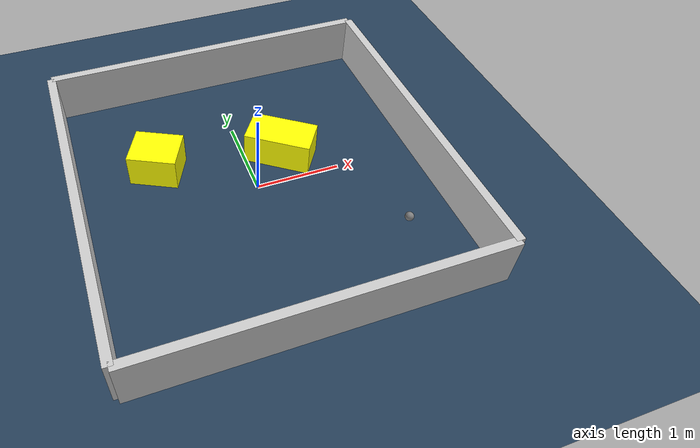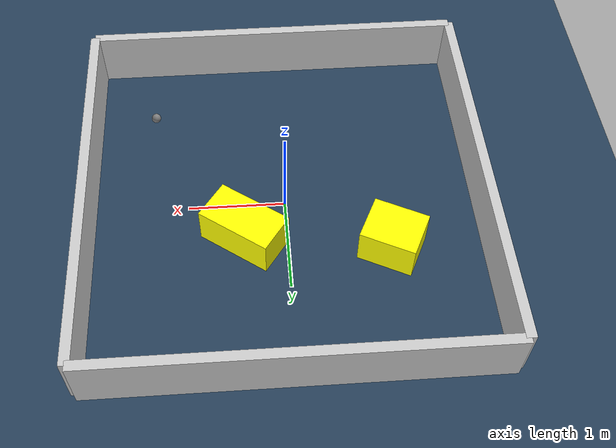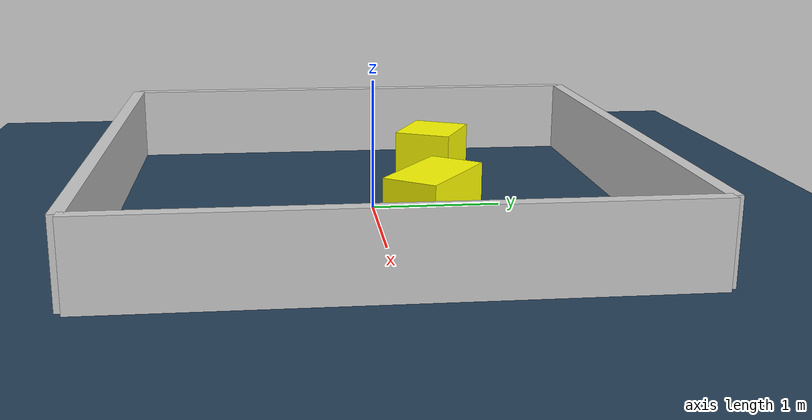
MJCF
<?xml version="1.0" ?>
<mujoco model="generated_environment">
  <option timestep="0.01" integrator="RK4" cone="elliptic"/>
  <default>
    <geom density="1"/>
  </default>
  <asset>
    <texture builtin="gradient" height="3072" rgb1="0.3 0.5 0.7" rgb2="0 0 0" type="skybox" width="512"/>
    <texture builtin="checker" height="300" mark="edge" markrgb="0.8 0.8 0.8" name="groundplane" rgb1="0.2 0.3 0.4" rgb2="0.1 0.2 0.3" type="2d" width="300"/>
    <material name="groundplane" reflectance="0.2" texrepeat="5 5" texture="groundplane" texuniform="true"/>
    <material name="robot" rgba="0.0 1.0 0.0 1"/>
  </asset>
  <worldbody>
    <light dir="0 0 -1" directional="true" pos="0 0 1.5"/>
    <geom condim="4" friction="1.0 0.005 0.001" material="groundplane" name="floor" size="0 0 0.05" type="plane"/>
    <body name="walls">
      <geom name="wall_1" condim="4" pos="-2.0 0.0 0.3" rgba="0.800000011920929 0.800000011920929 0.800000011920929 1.0" size="0.05 2.0 0.3" type="box"/>
      <geom name="wall_2" condim="4" pos="2.0 0.0 0.3" rgba="0.800000011920929 0.800000011920929 0.800000011920929 1.0" size="0.05 2.0 0.3" type="box"/>
      <geom name="wall_3" condim="4" pos="0.0 -2.0 0.3" rgba="0.800000011920929 0.800000011920929 0.800000011920929 1.0" size="2.0 0.05 0.3" type="box"/>
      <geom name="wall_4" condim="4" pos="0.0 2.0 0.3" rgba="0.800000011920929 0.800000011920929 0.800000011920929 1.0" size="2.0 0.05 0.3" type="box"/>
    </body>
    <body name="robot">
      <joint name="joint_x" type="slide" pos="0 0 0" axis="1 0 0"/>
      <joint name="joint_y" type="slide" pos="0 0 0" axis="0 1 0"/>
      <geom name="robot" type="sphere" pos="1.3423588206110346 -1.1087669023972342 0.2" size="0.05" mass="5." friction="1.0 0.005 0.0001" condim="4"/>
      <site name="sensor_ball"/>
    </body>
    <body name="obstacle_1_movable">
      <geom name="obstacle_1_movable" condim="4" pos="0.43257254879031004 0.4110215215929913 0.2" euler="0 0 54.36768782580537" friction="1.0 0.005 0.001" rgba="1 1 0 1" size="0.21312184371396226 0.39165716550599106 0.2" type="box" mass="0.1"/>
      <joint type="free"/>
    </body>
    <body name="obstacle_2_movable">
      <geom name="obstacle_2_movable" condim="4" pos="-1.0327732821229842 0.6232481197377495 0.2" euler="0 0 153.65272211498402" friction="1.0 0.005 0.001" rgba="1 1 0 1" size="0.28259470238676054 0.2360028677787807 0.2" type="box" mass="0.1"/>
      <joint type="free"/>
    </body>
  </worldbody>
  <actuator>
    <motor name="actuator_x" joint="joint_x" gear="1" ctrlrange="-1 1"/>
    <motor name="actuator_y" joint="joint_y" gear="1" ctrlrange="-1 1"/>
  </actuator>
</mujoco>
